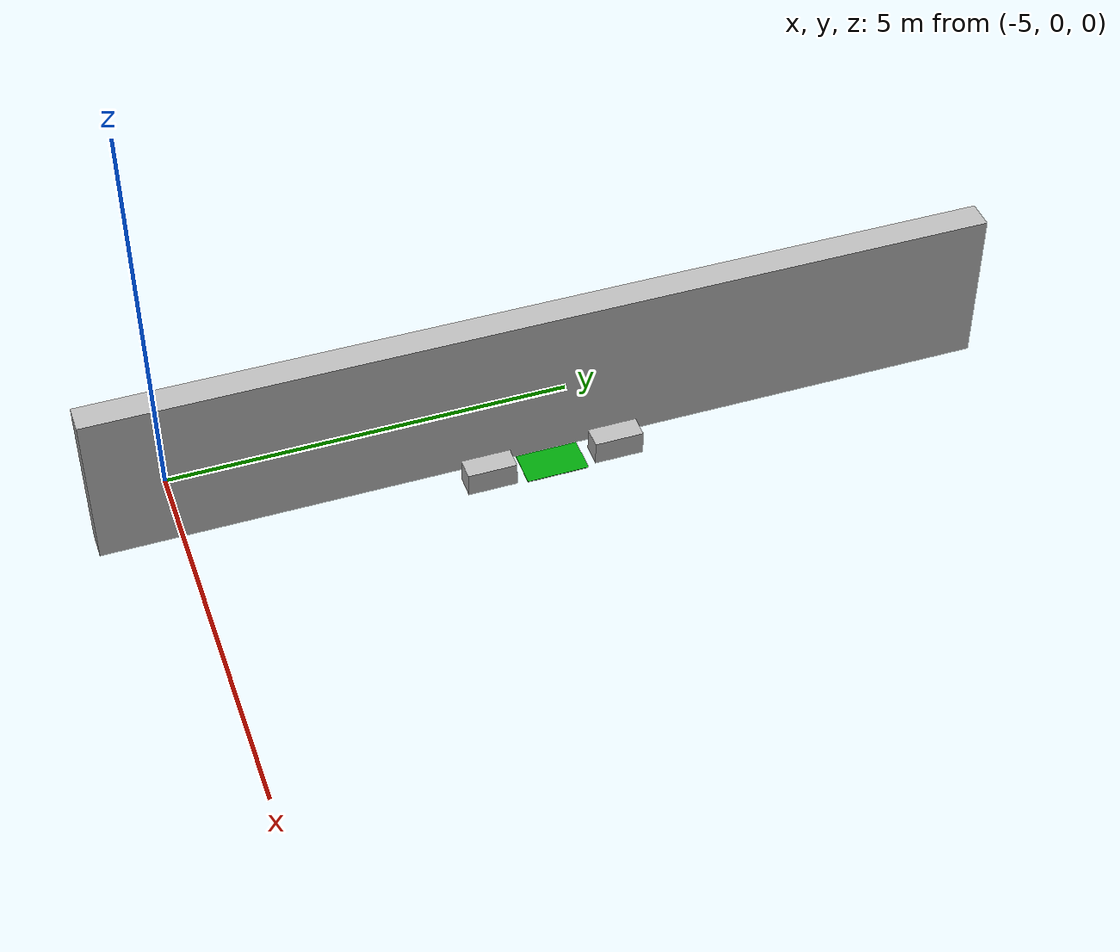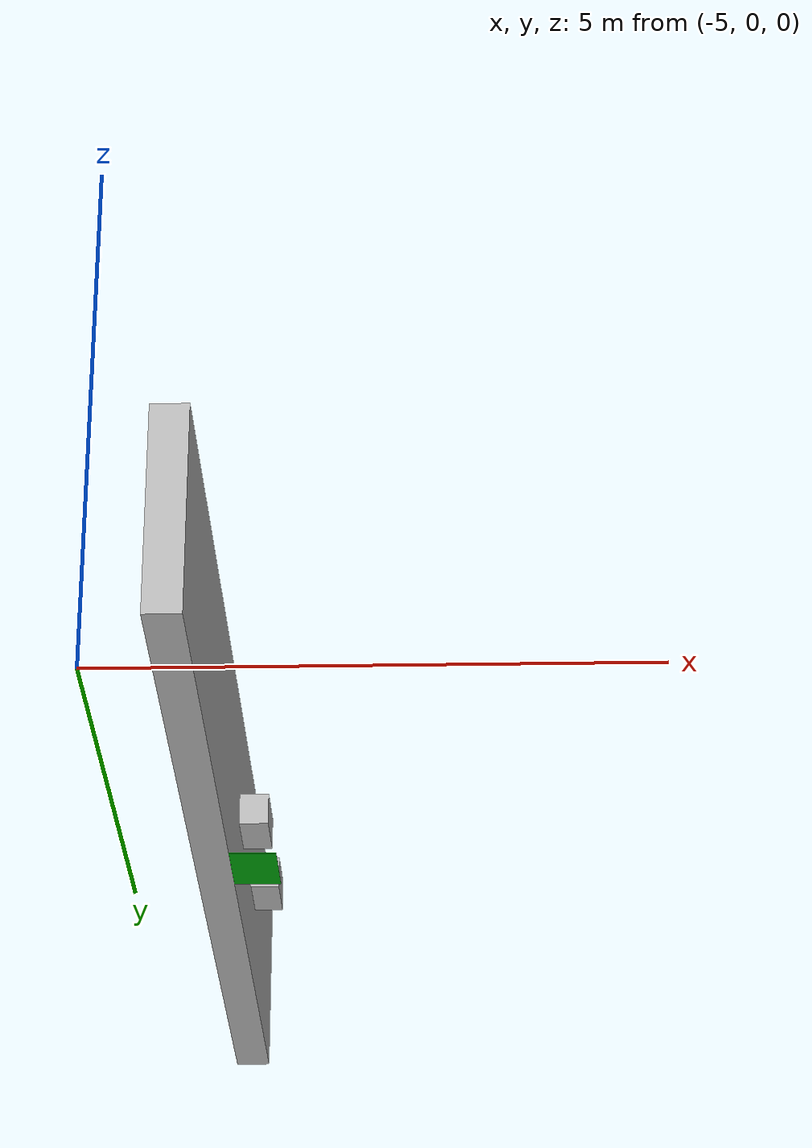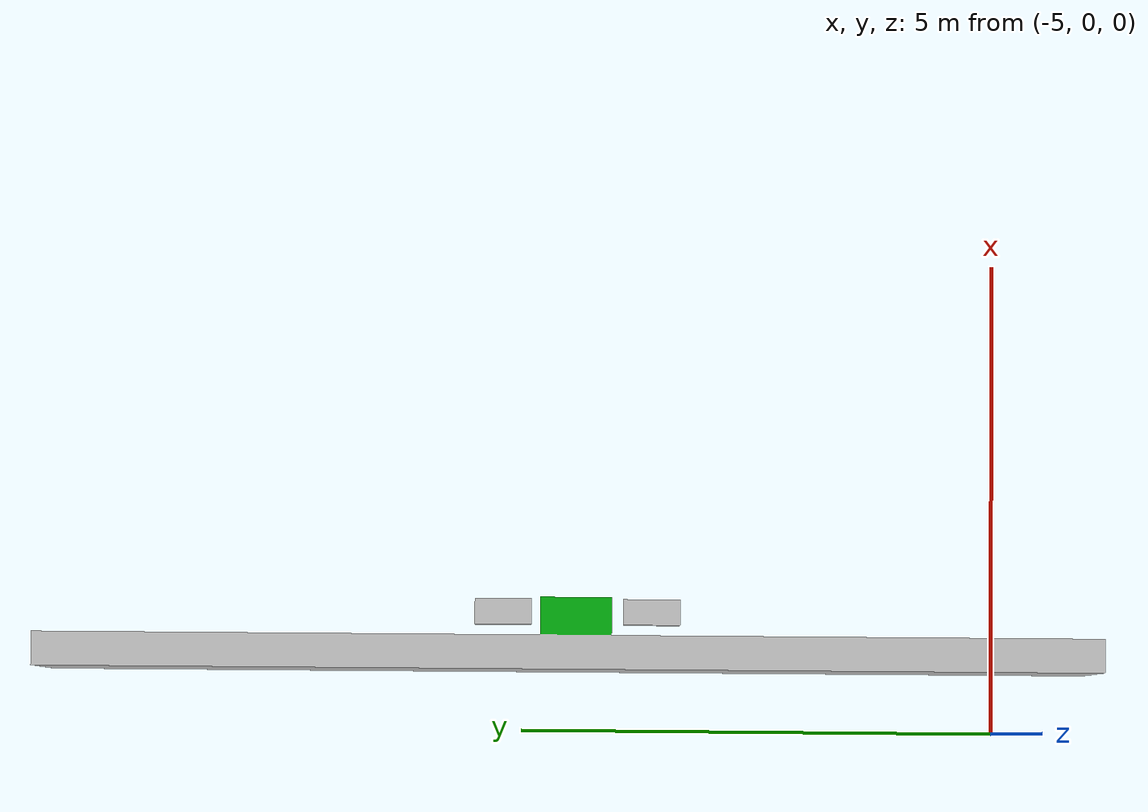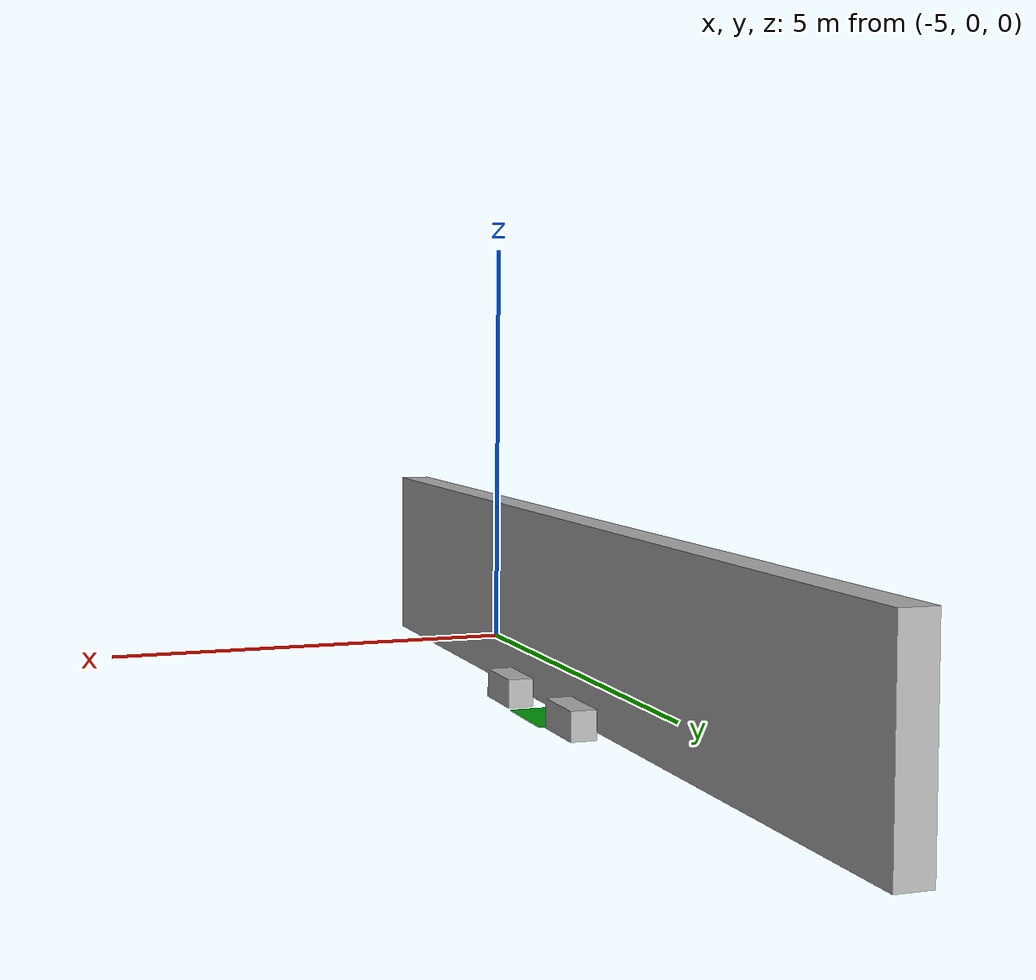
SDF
<?xml version='1.0'?>
<sdf version='1.4'>
  <model name="parking_1">
    <link name="link">
      <collision name="collision">
        <geometry>
          <mesh>
            <uri>model://racecar_description/meshes/parking_1.dae</uri>
          </mesh>
        </geometry>
      </collision>
      <visual name="visual">
        <geometry>
          <mesh>
            <uri>model://racecar_description/meshes/parking_1.dae</uri>
          </mesh>
        </geometry>
      </visual>
    </link>
    <static>1</static>
  </model>
</sdf>
